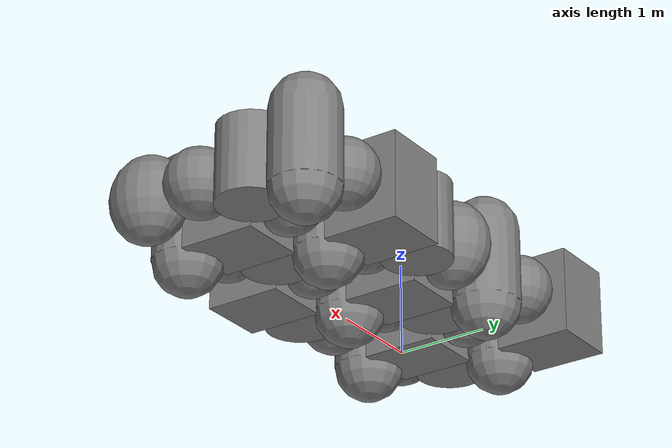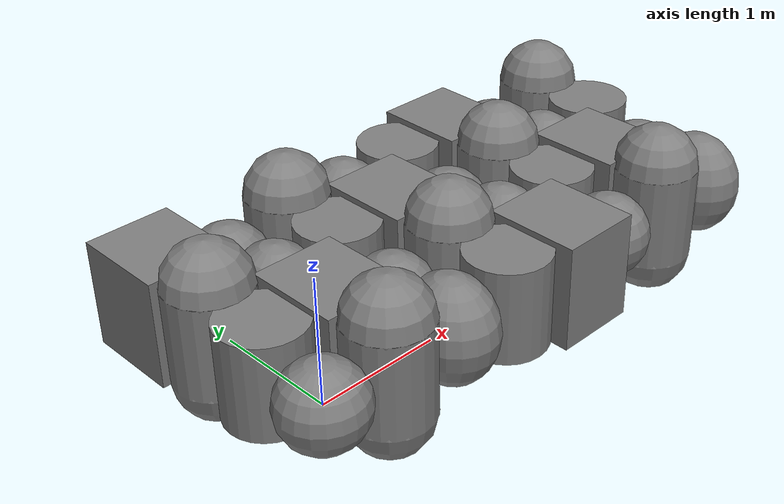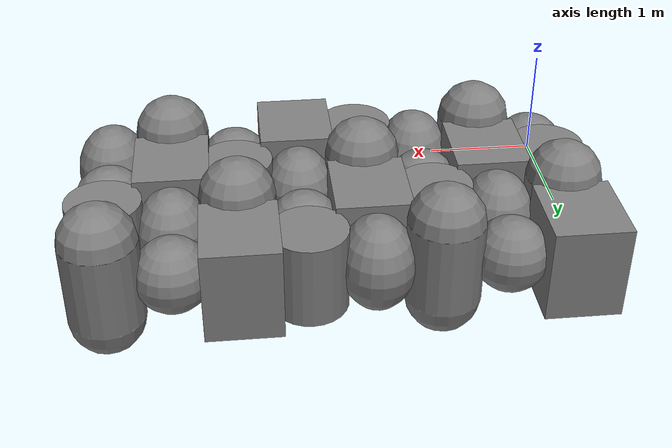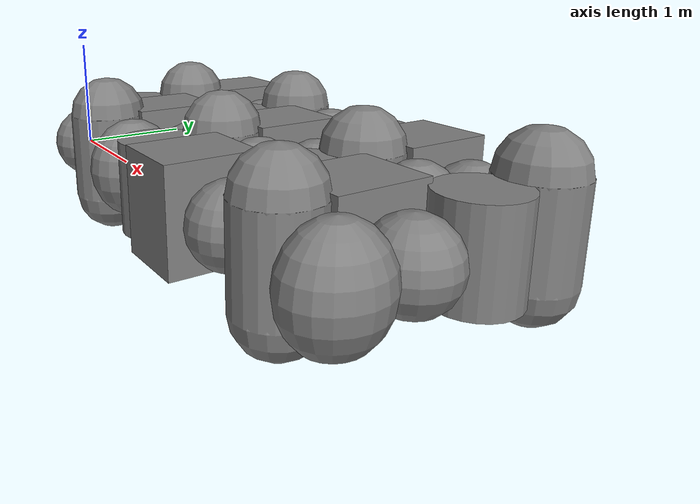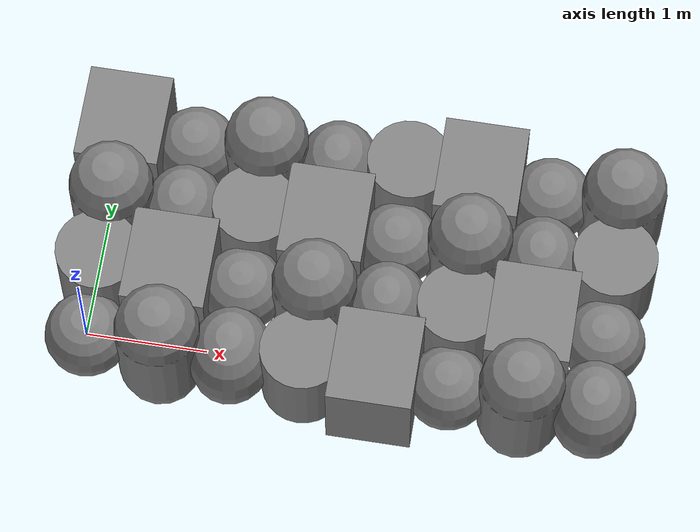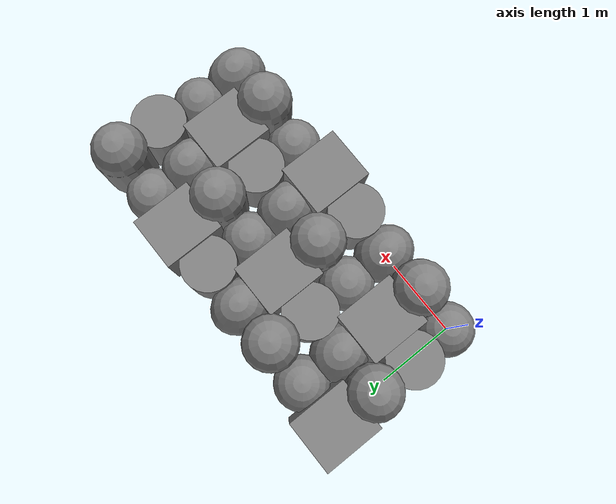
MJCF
<mujoco><option ccd_iterations="100"/><worldbody><body pos="0.0 0.0 0.0"><freejoint/><geom type="sphere" size=".35 .4 .45"/></body><body pos="0.6 0.0 0.0"><freejoint/><geom type="capsule" size=".35 .4 .45"/></body><body pos="1.2 0.0 0.0"><freejoint/><geom type="ellipsoid" size=".35 .4 .45"/></body><body pos="1.7999999999999998 0.0 0.0"><freejoint/><geom type="cylinder" size=".35 .4 .45"/></body><body pos="2.4 0.0 0.0"><freejoint/><geom type="box" size=".35 .4 .45"/></body><body pos="3.0 0.0 0.0"><freejoint/><geom type="sphere" size=".35 .4 .45"/></body><body pos="3.5999999999999996 0.0 0.0"><freejoint/><geom type="capsule" size=".35 .4 .45"/></body><body pos="4.2 0.0 0.0"><freejoint/><geom type="ellipsoid" size=".35 .4 .45"/></body><body pos="0.0 0.6 0.0"><freejoint/><geom type="cylinder" size=".35 .4 .45"/></body><body pos="0.6 0.6 0.0"><freejoint/><geom type="box" size=".35 .4 .45"/></body><body pos="1.2 0.6 0.0"><freejoint/><geom type="sphere" size=".35 .4 .45"/></body><body pos="1.7999999999999998 0.6 0.0"><freejoint/><geom type="capsule" size=".35 .4 .45"/></body><body pos="2.4 0.6 0.0"><freejoint/><geom type="ellipsoid" size=".35 .4 .45"/></body><body pos="3.0 0.6 0.0"><freejoint/><geom type="cylinder" size=".35 .4 .45"/></body><body pos="3.5999999999999996 0.6 0.0"><freejoint/><geom type="box" size=".35 .4 .45"/></body><body pos="4.2 0.6 0.0"><freejoint/><geom type="sphere" size=".35 .4 .45"/></body><body pos="0.0 1.2 0.0"><freejoint/><geom type="capsule" size=".35 .4 .45"/></body><body pos="0.6 1.2 0.0"><freejoint/><geom type="ellipsoid" size=".35 .4 .45"/></body><body pos="1.2 1.2 0.0"><freejoint/><geom type="cylinder" size=".35 .4 .45"/></body><body pos="1.7999999999999998 1.2 0.0"><freejoint/><geom type="box" size=".35 .4 .45"/></body><body pos="2.4 1.2 0.0"><freejoint/><geom type="sphere" size=".35 .4 .45"/></body><body pos="3.0 1.2 0.0"><freejoint/><geom type="capsule" size=".35 .4 .45"/></body><body pos="3.5999999999999996 1.2 0.0"><freejoint/><geom type="ellipsoid" size=".35 .4 .45"/></body><body pos="4.2 1.2 0.0"><freejoint/><geom type="cylinder" size=".35 .4 .45"/></body><body pos="0.0 1.7999999999999998 0.0"><freejoint/><geom type="box" size=".35 .4 .45"/></body><body pos="0.6 1.7999999999999998 0.0"><freejoint/><geom type="sphere" size=".35 .4 .45"/></body><body pos="1.2 1.7999999999999998 0.0"><freejoint/><geom type="capsule" size=".35 .4 .45"/></body><body pos="1.7999999999999998 1.7999999999999998 0.0"><freejoint/><geom type="ellipsoid" size=".35 .4 .45"/></body><body pos="2.4 1.7999999999999998 0.0"><freejoint/><geom type="cylinder" size=".35 .4 .45"/></body><body pos="3.0 1.7999999999999998 0.0"><freejoint/><geom type="box" size=".35 .4 .45"/></body><body pos="3.5999999999999996 1.7999999999999998 0.0"><freejoint/><geom type="sphere" size=".35 .4 .45"/></body><body pos="4.2 1.7999999999999998 0.0"><freejoint/><geom type="capsule" size=".35 .4 .45"/></body></worldbody></mujoco>
